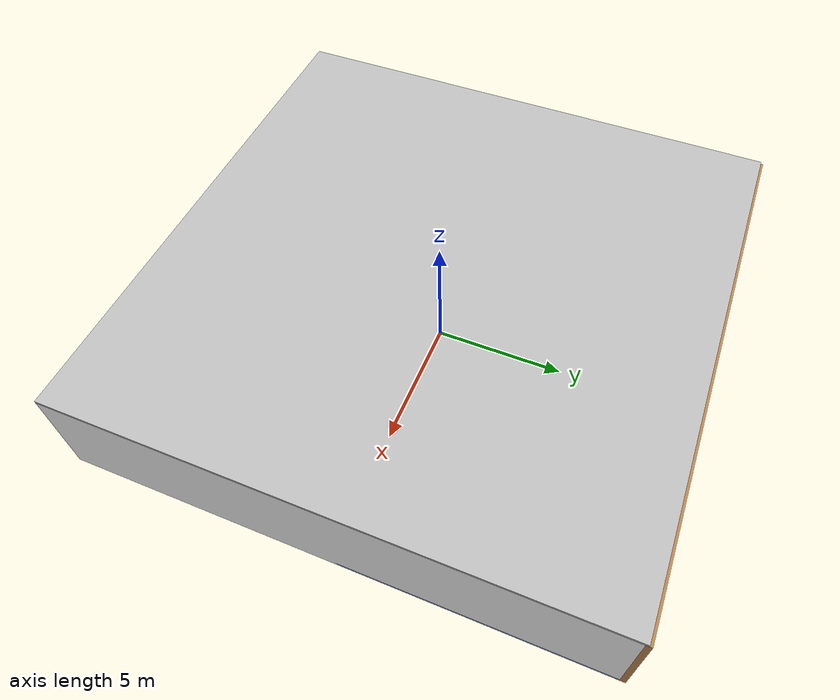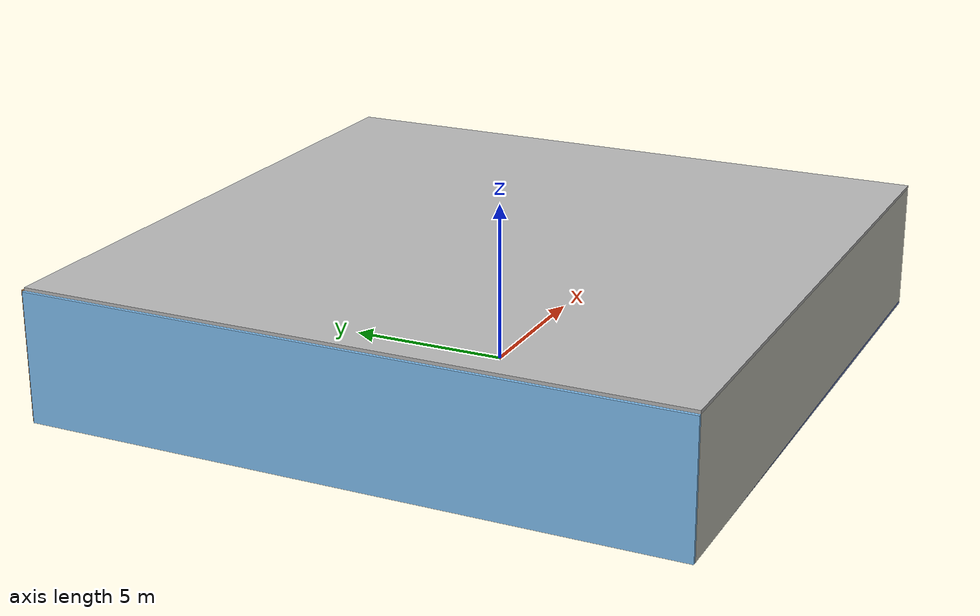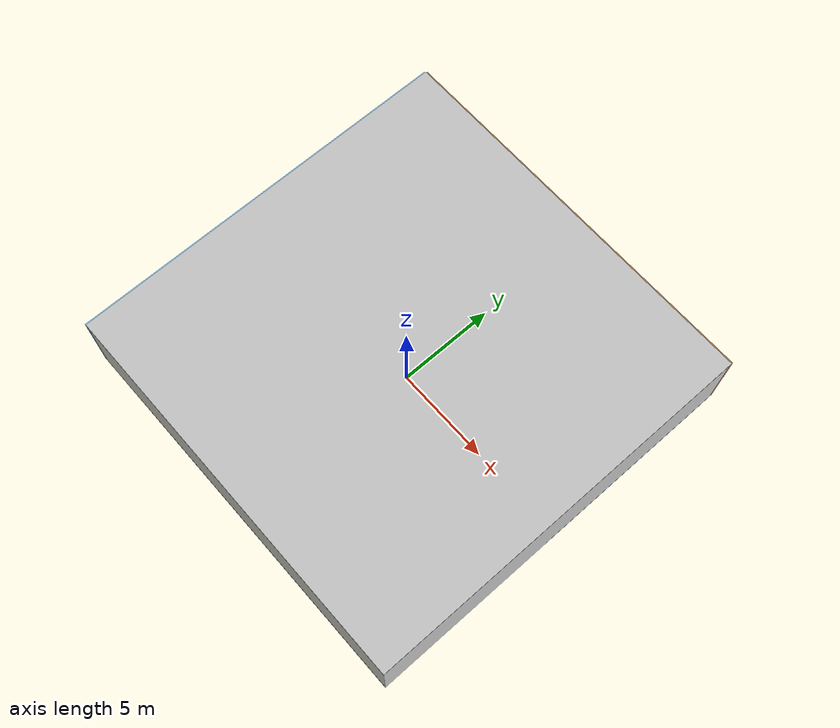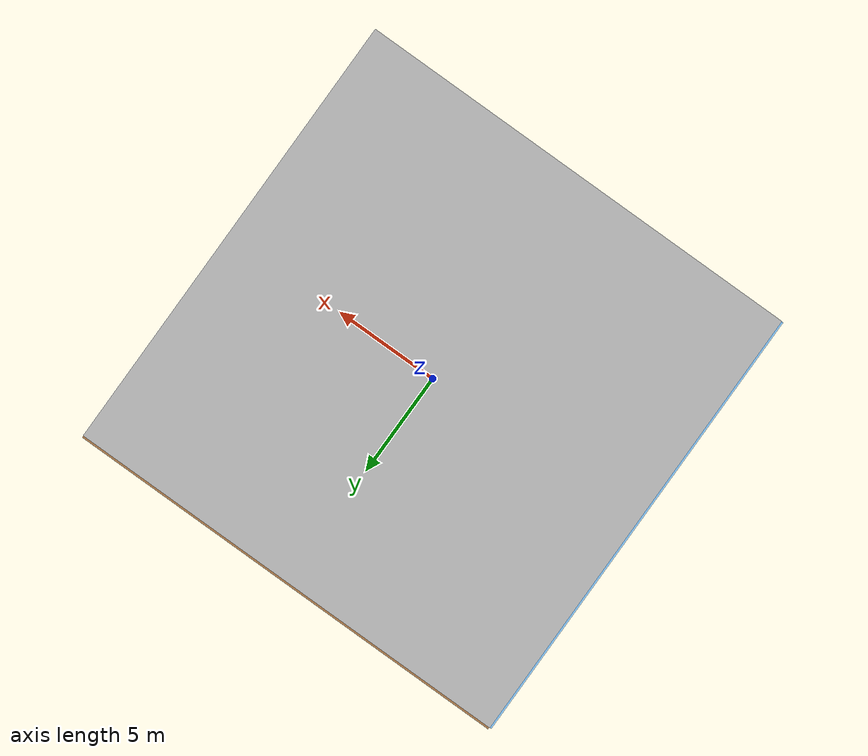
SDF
<sdf version="1.4">
 <world name="default">
  <physics type="ode">
   <max_step_size>0.001</max_step_size>
   <real_time_factor>1</real_time_factor>
   <real_time_update_rate>1000</real_time_update_rate>
   <gravity>0 0 -9.8</gravity>
  </physics>
  <scene><ambient>0.4 0.4 0.4 1</ambient><background>0.7 0.7 0.7 1</background><shadows>1</shadows></scene>
  <model name="Surrounding">
   <static>1</static>
   <link name="Ceiling">
    <collision name="Ceiling_Collision"><geometry><box><size>20 20 0.1</size></box></geometry></collision>
    <visual name="Ceiling_Visual">
     <geometry><box><size>20 20 0.1</size></box></geometry>
     <material>
      <script><uri>file://media/materials/scripts/gazebo.material</uri><name>Gazebo/JointAnchor</name></script>
     </material>
    </visual>
    <pose>0 0 4.05 0 0 0</pose>
   </link>
   <link name="Wall_South">
    <collision name="Wall_South_Collision">
     <geometry><box><size>20 0 4</size></box></geometry>
     <pose>0 0 2 0 -0 0</pose>
    </collision>
    <visual name="Wall_South_Visual">
     <pose>0 0 2 0 -0 0</pose>
     <geometry><box><size>20 0 4</size></box></geometry>
     <material>
      <script><uri>file://media/materials/scripts/gazebo.material</uri><name>Gazebo/PaintedWall</name></script>
     </material>
    </visual>
    <velocity_decay><linear>0</linear><angular>0</angular></velocity_decay>
    <pose>0 -10 0 0 -0 0</pose>
   </link>
   <link name="Wall_East">
    <collision name="Wall_21_Collision">
     <geometry><box><size>20 0 4</size></box></geometry>
     <pose>0 0 2 0 -0 0</pose>
    </collision>
    <visual name="Wall_21_Visual">
     <pose>0 0 2 0 -0 0</pose>
     <geometry><box><size>20 0 4</size></box></geometry>
     <material>
      <script><uri>file://media/materials/scripts/gazebo.material</uri><name>Gazebo/WhiteGlow</name></script>
     </material>
    </visual>
    <velocity_decay><linear>0</linear><angular>0</angular></velocity_decay>
    <pose>10 0 0 0 -0 1.5708</pose>
   </link>
   <link name="Wall_North">
    <collision name="Wall_22_Collision">
     <geometry><box><size>20 0.2 4</size></box></geometry>
     <pose>0 0 2 0 -0 0</pose>
    </collision>
    <visual name="Wall_22_Visual">
     <pose>0 0 2 0 -0 0</pose>
     <geometry><box><size>20 0.2 4</size></box></geometry>
     <material>
      <script><uri>file://media/materials/scripts/gazebo.material</uri><name>Gazebo/WoodPallet</name></script>
     </material>
    </visual>
    <velocity_decay><linear>0</linear><angular>0</angular></velocity_decay>
    <pose>0 10 0 0 -0 0</pose>
   </link>
   <link name="Wall_West">
    <collision name="Wall_23_Collision">
     <geometry><box><size>20 0.2 4</size></box></geometry>
     <pose>0 0 2 0 -0 0</pose>
    </collision>
    <visual name="Wall_23_Visual">
     <pose>0 0 2 0 -0 0</pose>
     <geometry><box><size>20 0.2 4</size></box></geometry>
     <material>
      <script><uri>file://media/materials/scripts/gazebo.material</uri><name>Gazebo/SkyBlue</name></script>
     </material>
    </visual>
    <velocity_decay><linear>0</linear><angular>0</angular></velocity_decay>
    <pose>-10 0 0 0 0 -1.5708</pose>
   </link>
   <link name="Ground_link">
    <collision name="collision">
     <pose>0 0 .05 0 -0 0</pose>
     <geometry><box><size>20 20 0.1</size></box></geometry>
    </collision>
    <visual name="visual">
     <pose>0 0 .05 0 -0 0</pose>
     <geometry><box><size>20 20 0.1</size></box></geometry>
     <material>
      <script><uri>file://media/materials/scripts/gazebo.material</uri><name>Gazebo/BlueTransparent</name></script>
     </material>
    </visual>
   </link>
   <static>1</static>
  </model>
  <spherical_coordinates>
   <surface_model>EARTH_WGS84</surface_model>
   <latitude_deg>0</latitude_deg>
   <longitude_deg>0</longitude_deg>
   <elevation>0</elevation>
   <heading_deg>0</heading_deg>
  </spherical_coordinates>
  <light name="lightball_0" type="diffuse">
   <diffuse>0.8 0.8 0.8 1</diffuse>
   <specular>0.2 0.2 0.2 1</specular>
   <attenuation>
    <range>100</range>
    <constant>0.7</constant>
    <linear>0.01</linear>
    <quadratic>0.001</quadratic>
   </attenuation>
   <direction>-0.5 0.1 -0.9</direction>
   <pose>-6.89718187698 2.32529019429 2.65809637653 0 0 0</pose>
  </light>
  <light name="lightball_1" type="diffuse">
   <diffuse>0.8 0.8 0.8 1</diffuse>
   <specular>0.2 0.2 0.2 1</specular>
   <attenuation>
    <range>100</range>
    <constant>0.7</constant>
    <linear>0.01</linear>
    <quadratic>0.001</quadratic>
   </attenuation>
   <direction>-0.5 0.1 -0.9</direction>
   <pose>-5.42475499657 6.75984121854 2.38314395769 0 0 0</pose>
  </light>
  <light name="lightball_2" type="diffuse">
   <diffuse>0.8 0.8 0.8 1</diffuse>
   <specular>0.2 0.2 0.2 1</specular>
   <attenuation>
    <range>100</range>
    <constant>0.7</constant>
    <linear>0.01</linear>
    <quadratic>0.001</quadratic>
   </attenuation>
   <direction>-0.5 0.1 -0.9</direction>
   <pose>4.07448707097 -6.86735343814 1.78692100225 0 0 0</pose>
  </light>
  <light name="lightball_3" type="diffuse">
   <diffuse>0.8 0.8 0.8 1</diffuse>
   <specular>0.2 0.2 0.2 1</specular>
   <attenuation>
    <range>100</range>
    <constant>0.7</constant>
    <linear>0.01</linear>
    <quadratic>0.001</quadratic>
   </attenuation>
   <direction>-0.5 0.1 -0.9</direction>
   <pose>-7.86160001499 -8.34486526983 3.36305761227 0 0 0</pose>
  </light>
  <light name="lightball_4" type="diffuse">
   <diffuse>0.8 0.8 0.8 1</diffuse>
   <specular>0.2 0.2 0.2 1</specular>
   <attenuation>
    <range>100</range>
    <constant>0.7</constant>
    <linear>0.01</linear>
    <quadratic>0.001</quadratic>
   </attenuation>
   <direction>-0.5 0.1 -0.9</direction>
   <pose>1.71670623614 -6.01416758071 2.82257964674 0 0 0</pose>
  </light>
  <light name="lightball_5" type="diffuse">
   <diffuse>0.8 0.8 0.8 1</diffuse>
   <specular>0.2 0.2 0.2 1</specular>
   <attenuation>
    <range>100</range>
    <constant>0.7</constant>
    <linear>0.01</linear>
    <quadratic>0.001</quadratic>
   </attenuation>
   <direction>-0.5 0.1 -0.9</direction>
   <pose>-8.24449531236 4.72325410999 0.729523136601 0 0 0</pose>
  </light>
  <light name="lightball_6" type="diffuse">
   <diffuse>0.8 0.8 0.8 1</diffuse>
   <specular>0.2 0.2 0.2 1</specular>
   <attenuation>
    <range>100</range>
    <constant>0.7</constant>
    <linear>0.01</linear>
    <quadratic>0.001</quadratic>
   </attenuation>
   <direction>-0.5 0.1 -0.9</direction>
   <pose>-9.80632074156 7.75446812515 0.648344807511 0 0 0</pose>
  </light>
  <include><uri>model://cabinet</uri><pose>-5.17338378366 -1.32291824858 0 0 0 2.97258408287</pose></include>
  <include><uri>model://cabinet</uri><pose>-2.10928918099 6.92868932638 0 0 0 2.78997036241</pose></include>
  <include>
   <uri>model://construction_cone</uri>
   <pose>4.88337989954 -5.03149067447 0 0 0 0.0618910110649</pose>
  </include>
  <include>
   <uri>model://textured_shapes</uri>
   <pose>7.60140604359 -4.20490186026 0 0 0 0.278866560225</pose>
  </include>
 </world>
</sdf>

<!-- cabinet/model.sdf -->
<sdf version="1.5">
  <model name="cabinet">
    <static>true</static>
    <link name="cabinet_bottom_plate">
      <inertial>
        <pose>0 0 -1 0 0 0</pose>
        <inertia>
          <ixx>2.050000</ixx>
          <ixy>0</ixy>
          <ixz>0</ixz>
          <iyy>2.050000</iyy>
          <iyz>0</iyz>
          <izz>2.050000</izz>
        </inertia>
        <mass>25.000000</mass>
      </inertial>
      <collision name="cabinet_bottom_plate_geom">
        <pose>0 0 0.010000 0 0 0</pose>
        <geometry>
          <box>
            <size>0.450000 0.450000 0.020000</size>
          </box>
        </geometry>
      </collision>
      <visual name="cabinet_bottom_plate_geom_visual">
        <pose>0 0 0.010000 0 0 0</pose>
        <geometry>
          <box>
            <size>0.450000 0.450000 0.020000</size>
          </box>
        </geometry>
        <material>
          <script>
            <uri>model://media/materials/scripts/gazebo.material</uri>
            <name>Gazebo/Wood</name>
          </script>
        </material>
      </visual>
      <collision name="cabinet_bottom_plate_geom_cabinet_back_plate">
        <pose>0.235000 0 0.510000 0 0 0</pose>
        <geometry>
          <box>
            <size>0.020000 0.450000 1.020000</size>
          </box>
        </geometry>
      </collision>
      <visual name="cabinet_bottom_plate_geom_cabinet_back_plate_visual">
        <pose>0.235000 0 0.510000 0 0 0</pose>
        <geometry>
          <box>
            <size>0.020000 0.450000 1.020000</size>
          </box>
        </geometry>
        <material>
          <script>
            <uri>model://media/materials/scripts/gazebo.material</uri>
            <name>Gazebo/Wood</name>
          </script>
        </material>
      </visual>
      <collision name="cabinet_bottom_plate_geom_cabinet_left_plate">
        <pose>0 0.235000 0.510000 0 0 0</pose>
        <geometry>
          <box>
            <size>0.450000 0.020000 1.020000</size>
          </box>
        </geometry>
      </collision>
      <visual name="cabinet_bottom_plate_geom_cabinet_left_plate_visual">
        <pose>0 0.235000 0.510000 0 0 0</pose>
        <geometry>
          <box>
            <size>0.450000 0.020000 1.020000</size>
          </box>
        </geometry>
        <material>
          <script>
            <uri>model://media/materials/scripts/gazebo.material</uri>
            <name>Gazebo/Wood</name>
          </script>
        </material>
      </visual>
      <collision name="cabinet_bottom_plate_geom_cabinet_middle_plate">
        <pose>0 0 0.510000 0 0 0</pose>
        <geometry>
          <box>
            <size>0.450000 0.450000 0.020000</size>
          </box>
        </geometry>
      </collision>
      <visual name="cabinet_bottom_plate_geom_cabinet_middle_plate_visual">
        <pose>0 0 0.510000 0 0 0</pose>
        <geometry>
          <box>
            <size>0.450000 0.450000 0.020000</size>
          </box>
        </geometry>
        <material>
          <script>
            <uri>model://media/materials/scripts/gazebo.material</uri>
            <name>Gazebo/Wood</name>
          </script>
        </material>
      </visual>
      <collision name="cabinet_bottom_plate_geom_cabinet_right_plate">
        <pose>0 -0.235000 0.510000 0 0 0</pose>
        <geometry>
          <box>
            <size>0.450000 0.020000 1.020000</size>
          </box>
        </geometry>
      </collision>
      <visual name="cabinet_bottom_plate_geom_cabinet_right_plate_visual">
        <pose>0 -0.235000 0.510000 0 0 0</pose>
        <geometry>
          <box>
            <size>0.450000 0.020000 1.020000</size>
          </box>
        </geometry>
        <material>
          <script>
            <uri>model://media/materials/scripts/gazebo.material</uri>
            <name>Gazebo/Wood</name>
          </script>
        </material>
      </visual>
      <collision name="cabinet_bottom_plate_geom_cabinet_top_plate">
        <pose>0 0 1.010000 0 0 0</pose>
        <geometry>
          <box>
            <size>0.450000 0.450000 0.020000</size>
          </box>
        </geometry>
      </collision>
      <visual name="cabinet_bottom_plate_geom_cabinet_top_plate_visual">
        <pose>0 0 1.010000 0 0 0</pose>
        <geometry>
          <box>
            <size>0.450000 0.450000 0.020000</size>
          </box>
        </geometry>
        <material>
          <script>
            <uri>model://media/materials/scripts/gazebo.material</uri>
            <name>Gazebo/Wood</name>
          </script>
        </material>
      </visual>
    </link>
  </model>
</sdf>

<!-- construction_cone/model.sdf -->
<sdf version="1.5">
  <model name="Construction Cone">
    <link name="link">
      <collision name="collision">
        <geometry>
          <mesh>
            <scale>10 10 10</scale>
            <uri>file://isr-testbed/construction_cone/meshes/construction_cone.dae</uri>
          </mesh>
        </geometry>
      </collision>
      <visual name="visual">
        <geometry>
          <mesh>
            <scale>10 10 10</scale>
            <uri>file://isr-testbed/construction_cone/meshes/construction_cone.dae</uri>
          </mesh>
        </geometry>
      </visual>
    </link>
  </model>
</sdf>

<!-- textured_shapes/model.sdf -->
<sdf version="1.6">
  <model name="textured_shapes">
    <pose>0 0 0.5 0 0 0</pose>
    <link name="box">
      <pose>0 -1.5 0 0 0 0</pose>
      <collision name="collision">
        <geometry>
          <box>
            <size>1 1 1</size>
          </box>
        </geometry>
      </collision>
      <visual name="visual">
        <geometry>
          <box>
            <size>1 1 1</size>
          </box>
        </geometry>
        <material>
          <script>
            <uri>model://../model_source/models/textured_shapes/materials/scripts</uri>
            <uri>model://../model_source/models/textured_shapes/materials/textures</uri>
            <name>TexturedShape/Squares</name>
          </script>
        </material>
      </visual>
    </link>
    <link name="sphere">
      <collision name="collision">
        <geometry>
          <sphere>
            <radius>0.5</radius>
          </sphere>
        </geometry>
      </collision>
      <visual name="visual">
        <geometry>
          <sphere>
            <radius>0.5</radius>
          </sphere>
        </geometry>
        <material>
          <script>
            <uri>model://../model_source/models/textured_shapes/materials/scripts</uri>
            <uri>model://../model_source/models/textured_shapes/materials/textures</uri>
            <name>TexturedShape/Squares</name>
          </script>
        </material>
      </visual>
    </link>
    <link name="cylinder">
      <pose>0 1.5 0 0 0 0</pose>
      <collision name="collision">
        <geometry>
          <cylinder>
            <radius>0.5</radius>
            <length>1</length>
          </cylinder>
        </geometry>
      </collision>
      <visual name="visual">
        <geometry>
          <cylinder>
            <radius>0.5</radius>
            <length>1</length>
          </cylinder>
        </geometry>
        <material>
          <script>
            <uri>model://../model_source/models/textured_shapes/materials/scripts</uri>
            <uri>model://../model_source/models/textured_shapes/materials/textures</uri>
            <name>TexturedShape/Squares</name>
          </script>
        </material>
      </visual>
    </link>
  </model>
</sdf>
